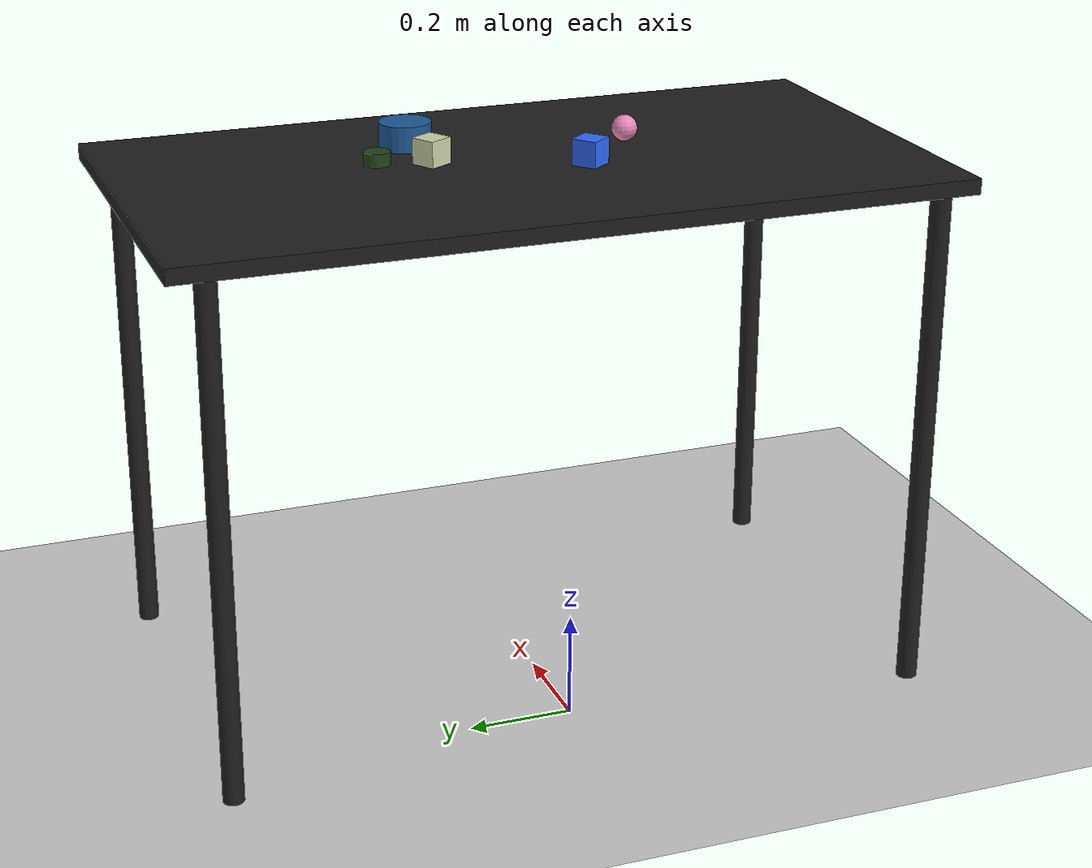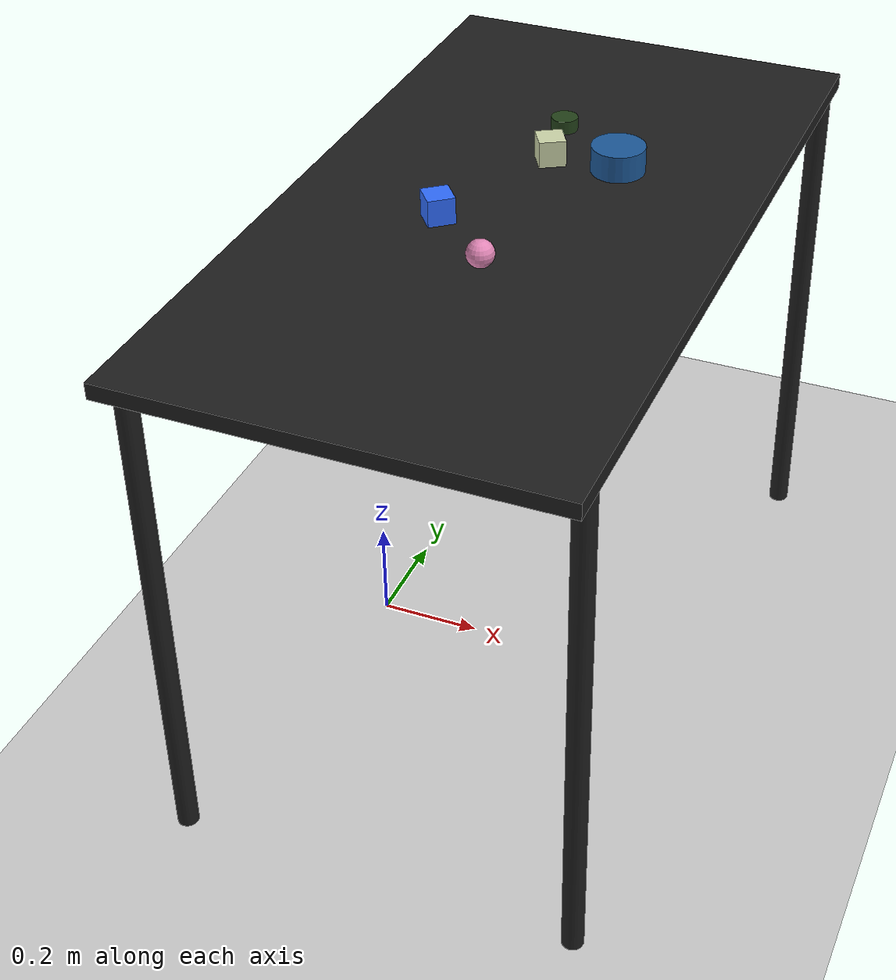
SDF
<?xml version="1.0" ?>
<sdf version="1.6">
  <world name="arm_world">
    <plugin filename="gz-sim-physics-system" name="gz::sim::systems::Physics">
      <engine>
        <filename>libgz-physics-bullet-featherstone-plugin.so</filename>
      </engine>
    </plugin>
    <plugin filename="gz-sim-user-commands-system" name="gz::sim::systems::UserCommands"/>
    <plugin filename="gz-sim-scene-broadcaster-system" name="gz::sim::systems::SceneBroadcaster"/>
    <plugin filename="gz-sim-sensors-system" name="gz::sim::systems::Sensors">
      <render_engine>ogre2</render_engine>
    </plugin>
    <gravity>0.0 0.0 -9.8</gravity>
    <scene>
      <shadows>false</shadows>
    </scene>
    <gui>
      <camera name="user_camera">
        <pose>0.75 -0.75 1.4 0 0.29 2.21</pose>
      </camera>
    </gui>
    <include>
      <uri>https://fuel.gazebosim.org/1.0/OpenRobotics/models/Sun</uri>
    </include>
    <model name="table">
      <static>true</static>
      <include>
        <uri>model://table</uri>
      </include>
      <pose>0.29 0 0 0 0 1.5708</pose>
    </model>
    <model name="ground_plane">
      <static>true</static>
      <link name="link">
        <collision name="collision">
          <geometry>
            <plane>
              <normal>0 0 1</normal>
            </plane>
          </geometry>
          <surface>
            <friction>
              <ode>
                <mu>1.0</mu>
                <mu2>1.0</mu2>
              </ode>
            </friction>
          </surface>
        </collision>
        <visual name="visual">
          <geometry>
            <plane>
              <normal>0 0 1</normal>
              <size>100 100</size>
            </plane>
          </geometry>
          <material>
            <ambient>0.8 0.8 0.8 1</ambient>
            <diffuse>0.8 0.8 0.8 1</diffuse>
            <specular>0.8 0.8 0.8 1</specular>
          </material>
        </visual>
      </link>
    </model>
    <model name="cylinder_l_0">
      <pose>0.419 0.179 1.05 0 0 2.33</pose>
      <link name="cylinder_l_0_link">
        <collision name="cylinder_l_0_collision">
          <geometry>
            <cylinder>
              <radius>0.05</radius>
              <length>0.05</length>
            </cylinder>
          </geometry>
        </collision>
        <visual name="cylinder_l_0_visual">
          <geometry>
            <cylinder>
              <radius>0.05</radius>
              <length>0.05</length>
            </cylinder>
          </geometry>
          <material>
            <ambient>0.11 0.35 0.6 1</ambient>
            <diffuse>0.11 0.35 0.6 1</diffuse>
          </material>
        </visual>
        <velocity_decay>
          <linear>1</linear>
          <angular>1</angular>
        </velocity_decay>
      </link>
    </model>
    <model name="cube_m_1">
      <pose>0.293 0.168 1.05 0 0 3.67</pose>
      <link name="cube_m_1_link">
        <collision name="cube_m_1_collision">
          <geometry>
            <box>
              <size>0.05 0.05 0.05</size>
            </box>
          </geometry>
        </collision>
        <visual name="cube_m_1_visual">
          <geometry>
            <box>
              <size>0.05 0.05 0.05</size>
            </box>
          </geometry>
          <material>
            <ambient>0.81 0.84 0.67 1</ambient>
            <diffuse>0.81 0.84 0.67 1</diffuse>
          </material>
        </visual>
        <velocity_decay>
          <linear>1</linear>
          <angular>1</angular>
        </velocity_decay>
      </link>
    </model>
    <model name="sphere_m_2">
      <pose>0.32 -0.226 1.05 0 0 3.19</pose>
      <link name="sphere_m_2_link">
        <collision name="sphere_m_2_collision">
          <geometry>
            <sphere>
              <radius>0.025</radius>
            </sphere>
          </geometry>
        </collision>
        <visual name="sphere_m_2_visual">
          <geometry>
            <sphere>
              <radius>0.025</radius>
            </sphere>
          </geometry>
          <material>
            <ambient>0.89 0.53 0.72 1</ambient>
            <diffuse>0.89 0.53 0.72 1</diffuse>
          </material>
        </visual>
        <velocity_decay>
          <linear>1</linear>
          <angular>1</angular>
        </velocity_decay>
      </link>
    </model>
    <model name="cylinder_m_3">
      <pose>0.28 0.276 1.05 0 0 1.45</pose>
      <link name="cylinder_m_3_link">
        <collision name="cylinder_m_3_collision">
          <geometry>
            <cylinder>
              <radius>0.025</radius>
              <length>0.025</length>
            </cylinder>
          </geometry>
        </collision>
        <visual name="cylinder_m_3_visual">
          <geometry>
            <cylinder>
              <radius>0.025</radius>
              <length>0.025</length>
            </cylinder>
          </geometry>
          <material>
            <ambient>0.14 0.26 0.1 1</ambient>
            <diffuse>0.14 0.26 0.1 1</diffuse>
          </material>
        </visual>
        <velocity_decay>
          <linear>1</linear>
          <angular>1</angular>
        </velocity_decay>
      </link>
    </model>
    <model name="cube_m_4">
      <pose>0.191 -0.105 1.05 0 0 5.39</pose>
      <link name="cube_m_4_link">
        <collision name="cube_m_4_collision">
          <geometry>
            <box>
              <size>0.05 0.05 0.05</size>
            </box>
          </geometry>
        </collision>
        <visual name="cube_m_4_visual">
          <geometry>
            <box>
              <size>0.05 0.05 0.05</size>
            </box>
          </geometry>
          <material>
            <ambient>0.19 0.43 1.0 1</ambient>
            <diffuse>0.19 0.43 1.0 1</diffuse>
          </material>
        </visual>
        <velocity_decay>
          <linear>1</linear>
          <angular>1</angular>
        </velocity_decay>
      </link>
    </model>
  </world>
</sdf>

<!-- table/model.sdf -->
<sdf version="1.5">
  <model name="table">
    <static>true</static>
    <link name="link">
      <collision name="surface">
        <pose>0 0 1.0 0 0 0</pose>
        <geometry>
          <box>
            <size>1.5 0.8 0.03</size>
          </box>
        </geometry>
        <surface>
          <friction>
            <ode>
              <mu>0.6</mu>
              <mu2>0.6</mu2>
            </ode>
          </friction>
        </surface>
      </collision>
      <visual name="surface">
        <pose>0 0 1.0 0 0 0</pose>
        <geometry>
          <box>
            <size>1.5 0.8 0.03</size>
          </box>
        </geometry>
        <material>
          <script>
            <uri>file://media/materials/scripts/gazebo.material</uri>
            <name>Gazebo/Black</name>
          </script>
        </material>
      </visual>
      <collision name="front_left_leg">
        <pose>0.68 0.38 0.5 0 0 0</pose>
        <geometry>
          <cylinder>
            <radius>0.02</radius>
            <length>1.0</length>
          </cylinder>
        </geometry>
      </collision>
      <visual name="front_left_leg">
        <pose>0.68 0.38 0.5 0 0 0</pose>
        <geometry>
          <cylinder>
            <radius>0.02</radius>
            <length>1.0</length>
          </cylinder>
        </geometry>
        <material>
          <script>
            <uri>file://media/materials/scripts/gazebo.material</uri>
            <name>Gazebo/Black</name>
          </script>
        </material>
      </visual>
      <collision name="front_right_leg">
        <pose>0.68 -0.38 0.5 0 0 0</pose>
        <geometry>
          <cylinder>
            <radius>0.02</radius>
            <length>1.0</length>
          </cylinder>
        </geometry>
      </collision>
      <visual name="front_right_leg">
        <pose>0.68 -0.38 0.5 0 0 0</pose>
        <geometry>
          <cylinder>
            <radius>0.02</radius>
            <length>1.0</length>
          </cylinder>
        </geometry>
        <material>
          <script>
            <uri>file://media/materials/scripts/gazebo.material</uri>
            <name>Gazebo/Black</name>
          </script>
        </material>
      </visual>
      <collision name="back_right_leg">
        <pose>-0.68 -0.38 0.5 0 0 0</pose>
        <geometry>
          <cylinder>
            <radius>0.02</radius>
            <length>1.0</length>
          </cylinder>
        </geometry>
      </collision>
      <visual name="back_right_leg">
        <pose>-0.68 -0.38 0.5 0 0 0</pose>
        <geometry>
          <cylinder>
            <radius>0.02</radius>
            <length>1.0</length>
          </cylinder>
        </geometry>
        <material>
          <script>
            <uri>file://media/materials/scripts/gazebo.material</uri>
            <name>Gazebo/Black</name>
          </script>
        </material>
      </visual>
      <collision name="back_left_leg">
        <pose>-0.68 0.38 0.5 0 0 0</pose>
        <geometry>
          <cylinder>
            <radius>0.02</radius>
            <length>1.0</length>
          </cylinder>
        </geometry>
      </collision>
      <visual name="back_left_leg">
        <pose>-0.68 0.38 0.5 0 0 0</pose>
        <geometry>
          <cylinder>
            <radius>0.02</radius>
            <length>1.0</length>
          </cylinder>
        </geometry>
        <material>
          <script>
            <uri>file://media/materials/scripts/gazebo.material</uri>
            <name>Gazebo/Black</name>
          </script>
        </material>
      </visual>
    </link>
  </model>
</sdf>
